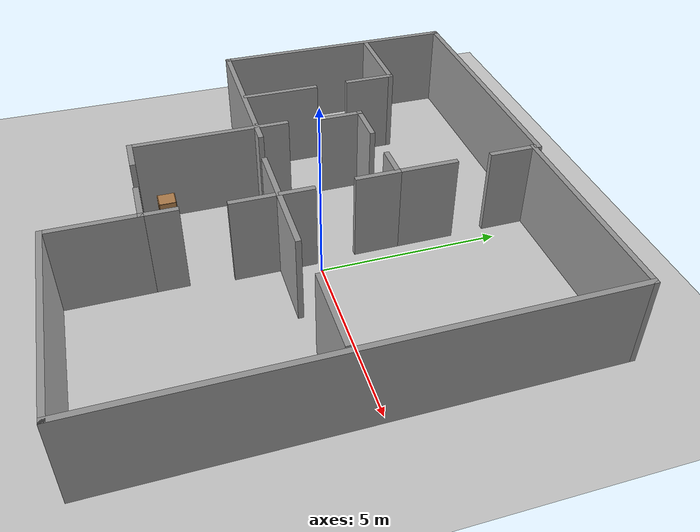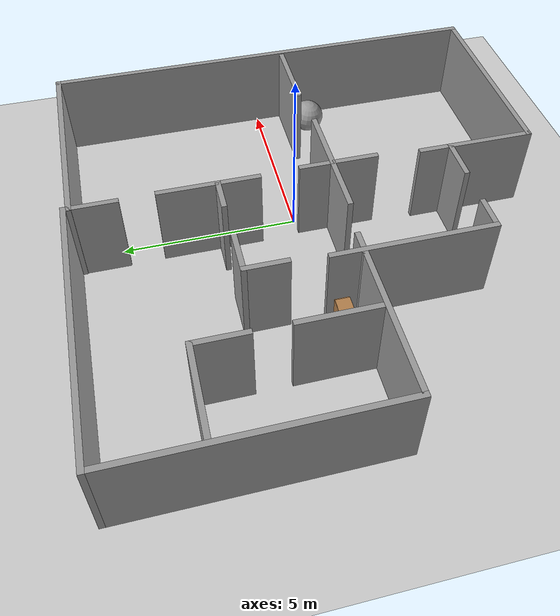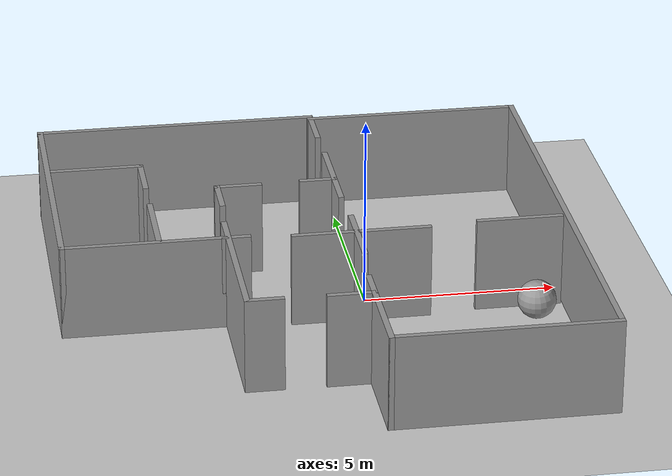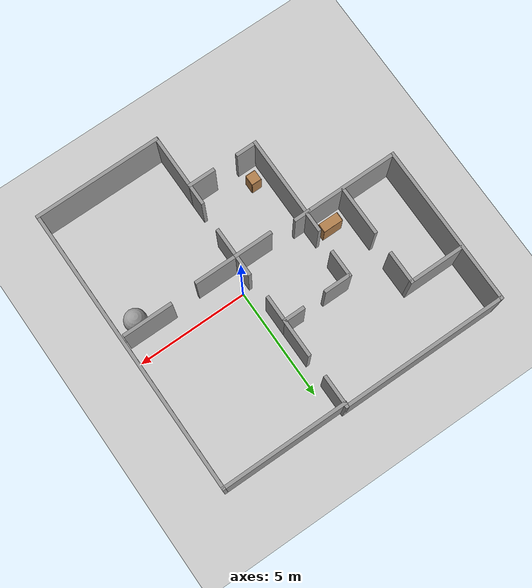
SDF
<sdf version="1.6">
 <world name="__default__">
  <model name="ground_plane">
   <static>1</static>
   <link name="link">
    <collision name="collision">
     <geometry><plane><normal>0 0 1</normal><size>100 100</size></plane></geometry>
     <surface>
      <contact><collide_bitmask>65535</collide_bitmask></contact>
      <friction><ode><mu>100</mu><mu2>50</mu2></ode></friction>
     </surface>
    </collision>
    <visual name="visual">
     <cast_shadows>0</cast_shadows>
     <geometry><plane><normal>0 0 1</normal><size>100 100</size></plane></geometry>
     <material>
      <script><uri>file://media/materials/scripts/gazebo.material</uri><name>Gazebo/Grey</name></script>
     </material>
    </visual>
   </link>
  </model>
  <model name="Untitled">
   <pose>-1.36467 -0.22662 0 0 -0 0</pose>
   <link name="Wall_0">
    <collision name="Wall_0_Collision">
     <geometry><box><size>7.5 0.15 2.5</size></box></geometry>
     <pose>0 0 1.25 0 -0 0</pose>
    </collision>
    <visual name="Wall_0_Visual">
     <pose>0 0 1.25 0 -0 0</pose>
     <geometry><box><size>7.5 0.15 2.5</size></box></geometry>
     <material>
      <script><uri>file://media/materials/scripts/gazebo.material</uri><name>Gazebo/Grey</name></script>
      <ambient>1 1 1 1</ambient>
     </material>
     <meta><layer>0</layer></meta>
    </visual>
    <pose>-2.78823 6.49198 0 0 -0 0</pose>
   </link>
   <link name="Wall_1">
    <collision name="Wall_1_Collision">
     <geometry><box><size>1.5 0.15 2.5</size></box></geometry>
     <pose>0 0 1.25 0 -0 0</pose>
    </collision>
    <visual name="Wall_1_Visual">
     <pose>0 0 1.25 0 -0 0</pose>
     <geometry><box><size>1.5 0.15 2.5</size></box></geometry>
     <material>
      <script><uri>file://media/materials/scripts/gazebo.material</uri><name>Gazebo/Grey</name></script>
      <ambient>1 1 1 1</ambient>
     </material>
     <meta><layer>0</layer></meta>
    </visual>
    <pose>0.886769 5.81698 0 0 -0 -1.5708</pose>
   </link>
   <link name="Wall_13">
    <collision name="Wall_13_Collision">
     <geometry><box><size>4.5 0.15 2.5</size></box></geometry>
     <pose>0 0 1.25 0 -0 0</pose>
    </collision>
    <visual name="Wall_13_Visual">
     <pose>0 0 1.25 0 -0 0</pose>
     <geometry><box><size>4.5 0.15 2.5</size></box></geometry>
     <material>
      <script><uri>file://media/materials/scripts/gazebo.material</uri><name>Gazebo/Grey</name></script>
      <ambient>1 1 1 1</ambient>
     </material>
     <meta><layer>0</layer></meta>
    </visual>
    <pose>-2.26562 -1.94446 0 0 -0 -1.5708</pose>
   </link>
   <link name="Wall_14">
    <collision name="Wall_14_Collision">
     <geometry><box><size>1 0.15 2.5</size></box></geometry>
     <pose>0 0 1.25 0 -0 0</pose>
    </collision>
    <visual name="Wall_14_Visual">
     <pose>0 0 1.25 0 -0 0</pose>
     <geometry><box><size>1 0.15 2.5</size></box></geometry>
     <material>
      <script><uri>file://media/materials/scripts/gazebo.material</uri><name>Gazebo/Grey</name></script>
      <ambient>1 1 1 1</ambient>
     </material>
     <meta><layer>0</layer></meta>
    </visual>
    <pose>-1.84062 -4.11946 0 0 -0 0</pose>
   </link>
   <link name="Wall_16">
    <collision name="Wall_16_Collision">
     <geometry><box><size>1.25 0.15 2.5</size></box></geometry>
     <pose>0 0 1.25 0 -0 0</pose>
    </collision>
    <visual name="Wall_16_Visual">
     <pose>0 0 1.25 0 -0 0</pose>
     <geometry><box><size>1.25 0.15 2.5</size></box></geometry>
     <material>
      <script><uri>file://media/materials/scripts/gazebo.material</uri><name>Gazebo/Grey</name></script>
      <ambient>1 1 1 1</ambient>
     </material>
     <meta><layer>0</layer></meta>
    </visual>
    <pose>0.313231 -4.14198 0 0 -0 0</pose>
   </link>
   <link name="Wall_21">
    <collision name="Wall_21_Collision">
     <geometry><box><size>2.5 0.15 2.5</size></box></geometry>
     <pose>0 0 1.25 0 -0 0</pose>
    </collision>
    <visual name="Wall_21_Visual">
     <pose>0 0 1.25 0 -0 0</pose>
     <geometry><box><size>2.5 0.15 2.5</size></box></geometry>
     <material>
      <script><uri>file://media/materials/scripts/gazebo.material</uri><name>Gazebo/Grey</name></script>
      <ambient>1 1 1 1</ambient>
     </material>
     <meta><layer>0</layer></meta>
    </visual>
    <pose>0.863231 -5.31698 0 0 -0 -1.5708</pose>
   </link>
   <link name="Wall_22">
    <collision name="Wall_22_Collision">
     <geometry><box><size>5.75 0.15 2.5</size></box></geometry>
     <pose>0 0 1.25 0 -0 0</pose>
    </collision>
    <visual name="Wall_22_Visual">
     <pose>0 0 1.25 0 -0 0</pose>
     <geometry><box><size>5.75 0.15 2.5</size></box></geometry>
     <material>
      <script><uri>file://media/materials/scripts/gazebo.material</uri><name>Gazebo/Grey</name></script>
      <ambient>1 1 1 1</ambient>
     </material>
     <meta><layer>0</layer></meta>
    </visual>
    <pose>3.66323 -6.49198 0 0 -0 0</pose>
   </link>
   <link name="Wall_23">
    <collision name="Wall_23_Collision">
     <geometry><box><size>13 0.15 2.5</size></box></geometry>
     <pose>0 0 1.25 0 -0 0</pose>
    </collision>
    <visual name="Wall_23_Visual">
     <pose>0 0 1.25 0 -0 0</pose>
     <geometry><box><size>13 0.15 2.5</size></box></geometry>
     <material>
      <script><uri>file://media/materials/scripts/gazebo.material</uri><name>Gazebo/Grey</name></script>
      <ambient>1 1 1 1</ambient>
     </material>
     <meta><layer>0</layer></meta>
    </visual>
    <pose>6.46323 -0.066979 0 0 -0 1.5708</pose>
   </link>
   <link name="Wall_24">
    <collision name="Wall_24_Collision">
     <geometry><box><size>5.75 0.15 2.5</size></box></geometry>
     <pose>0 0 1.25 0 -0 0</pose>
    </collision>
    <visual name="Wall_24_Visual">
     <pose>0 0 1.25 0 -0 0</pose>
     <geometry><box><size>5.75 0.15 2.5</size></box></geometry>
     <material>
      <script><uri>file://media/materials/scripts/gazebo.material</uri><name>Gazebo/Grey</name></script>
      <ambient>1 1 1 1</ambient>
     </material>
     <meta><layer>0</layer></meta>
    </visual>
    <pose>3.66323 6.35802 0 0 -0 3.14159</pose>
   </link>
   <link name="Wall_26">
    <collision name="Wall_26_Collision">
     <geometry><box><size>7.25 0.15 2.5</size></box></geometry>
     <pose>0 0 1.25 0 -0 0</pose>
    </collision>
    <visual name="Wall_26_Visual">
     <pose>0 0 1.25 0 -0 0</pose>
     <geometry><box><size>7.25 0.15 2.5</size></box></geometry>
     <material>
      <script><uri>file://media/materials/scripts/gazebo.material</uri><name>Gazebo/Grey</name></script>
      <ambient>1 1 1 1</ambient>
     </material>
     <meta><layer>0</layer></meta>
    </visual>
    <pose>-6.46323 2.94198 0 0 -0 -1.5708</pose>
   </link>
   <link name="Wall_27">
    <collision name="Wall_27_Collision">
     <geometry><box><size>4.25 0.15 2.5</size></box></geometry>
     <pose>0 0 1.25 0 -0 0</pose>
    </collision>
    <visual name="Wall_27_Visual">
     <pose>0 0 1.25 0 -0 0</pose>
     <geometry><box><size>4.25 0.15 2.5</size></box></geometry>
     <material>
      <script><uri>file://media/materials/scripts/gazebo.material</uri><name>Gazebo/Grey</name></script>
      <ambient>1 1 1 1</ambient>
     </material>
     <meta><layer>0</layer></meta>
    </visual>
    <pose>-4.41323 -0.608021 0 0 -0 0</pose>
   </link>
   <link name="Wall_29">
    <collision name="Wall_29_Collision">
     <geometry><box><size>1.25 0.15 2.5</size></box></geometry>
     <pose>0 0 1.25 0 -0 0</pose>
    </collision>
    <visual name="Wall_29_Visual">
     <pose>0 0 1.25 0 -0 0</pose>
     <geometry><box><size>1.25 0.15 2.5</size></box></geometry>
     <material>
      <script><uri>file://media/materials/scripts/gazebo.material</uri><name>Gazebo/Grey</name></script>
      <ambient>1 1 1 1</ambient>
     </material>
     <meta><layer>0</layer></meta>
    </visual>
    <pose>0.917575 1.89337 0 0 -0 -1.5708</pose>
   </link>
   <link name="Wall_3">
    <collision name="Wall_3_Collision">
     <geometry><box><size>1.75 0.15 2.5</size></box></geometry>
     <pose>0 0 1.25 0 -0 0</pose>
    </collision>
    <visual name="Wall_3_Visual">
     <pose>0 0 1.25 0 -0 0</pose>
     <geometry><box><size>1.75 0.15 2.5</size></box></geometry>
     <material>
      <script><uri>file://media/materials/scripts/gazebo.material</uri><name>Gazebo/Grey</name></script>
      <ambient>1 1 1 1</ambient>
     </material>
     <meta><layer>0</layer></meta>
    </visual>
    <pose>0.917575 3.24337 0 0 -0 -1.5708</pose>
   </link>
   <link name="Wall_31">
    <collision name="Wall_31_Collision">
     <geometry><box><size>2.25 0.15 2.5</size></box></geometry>
     <pose>0 0 1.25 0 -0 0</pose>
    </collision>
    <visual name="Wall_31_Visual">
     <pose>0 0 1.25 0 -0 0</pose>
     <geometry><box><size>2.25 0.15 2.5</size></box></geometry>
     <material>
      <script><uri>file://media/materials/scripts/gazebo.material</uri><name>Gazebo/Grey</name></script>
      <ambient>1 1 1 1</ambient>
     </material>
     <meta><layer>0</layer></meta>
    </visual>
    <pose>0.987535 -0.924403 0 0 -0 -1.5708</pose>
   </link>
   <link name="Wall_36">
    <collision name="Wall_36_Collision">
     <geometry><box><size>1 0.15 2.5</size></box></geometry>
     <pose>0 0 1.25 0 -0 0</pose>
    </collision>
    <visual name="Wall_36_Visual">
     <pose>0 0 1.25 0 -0 0</pose>
     <geometry><box><size>1 0.15 2.5</size></box></geometry>
     <material>
      <script><uri>file://media/materials/scripts/gazebo.material</uri><name>Gazebo/Grey</name></script>
      <ambient>1 1 1 1</ambient>
     </material>
     <meta><layer>0</layer></meta>
    </visual>
    <pose>0.863231 -3.71698 0 0 -0 1.5708</pose>
   </link>
   <link name="Wall_39">
    <collision name="Wall_39_Collision">
     <geometry><box><size>2 0.15 2.5</size></box></geometry>
     <pose>0 0 1.25 0 -0 0</pose>
    </collision>
    <visual name="Wall_39_Visual">
     <pose>0 0 1.25 0 -0 0</pose>
     <geometry><box><size>2 0.15 2.5</size></box></geometry>
     <material>
      <script><uri>file://media/materials/scripts/gazebo.material</uri><name>Gazebo/Grey</name></script>
      <ambient>1 1 1 1</ambient>
     </material>
     <meta><layer>0</layer></meta>
    </visual>
    <pose>1.91254 -0.748906 0 0 -0 0</pose>
   </link>
   <link name="Wall_4">
    <collision name="Wall_4_Collision">
     <geometry><box><size>1 0.15 2.5</size></box></geometry>
     <pose>0 0 1.25 0 -0 0</pose>
    </collision>
    <visual name="Wall_4_Visual">
     <pose>0 0 1.25 0 -0 0</pose>
     <geometry><box><size>1 0.15 2.5</size></box></geometry>
     <material>
      <script><uri>file://media/materials/scripts/gazebo.material</uri><name>Gazebo/Grey</name></script>
      <ambient>1 1 1 1</ambient>
     </material>
     <meta><layer>0</layer></meta>
    </visual>
    <pose>0.492575 2.44337 0 0 -0 3.14159</pose>
   </link>
   <link name="Wall_41">
    <collision name="Wall_41_Collision">
     <geometry><box><size>2.25 0.15 2.5</size></box></geometry>
     <pose>0 0 1.25 0 -0 0</pose>
    </collision>
    <visual name="Wall_41_Visual">
     <pose>0 0 1.25 0 -0 0</pose>
     <geometry><box><size>2.25 0.15 2.5</size></box></geometry>
     <material>
      <script><uri>file://media/materials/scripts/gazebo.material</uri><name>Gazebo/Grey</name></script>
      <ambient>1 1 1 1</ambient>
     </material>
     <meta><layer>0</layer></meta>
    </visual>
    <pose>5.22073 -0.608986 0 0 -0 0</pose>
   </link>
   <link name="Wall_43">
    <collision name="Wall_43_Collision">
     <geometry><box><size>0.75 0.15 2.5</size></box></geometry>
     <pose>0 0 1.25 0 -0 0</pose>
    </collision>
    <visual name="Wall_43_Visual">
     <pose>0 0 1.25 0 -0 0</pose>
     <geometry><box><size>0.75 0.15 2.5</size></box></geometry>
     <material>
      <script><uri>file://media/materials/scripts/gazebo.material</uri><name>Gazebo/Grey</name></script>
      <ambient>1 1 1 1</ambient>
     </material>
     <meta><layer>0</layer></meta>
    </visual>
    <pose>-2.06323 -0.608021 0 0 -0 0</pose>
   </link>
   <link name="Wall_45">
    <collision name="Wall_45_Collision">
     <geometry><box><size>1.75 0.15 2.5</size></box></geometry>
     <pose>0 0 1.25 0 -0 0</pose>
    </collision>
    <visual name="Wall_45_Visual">
     <pose>0 0 1.25 0 -0 0</pose>
     <geometry><box><size>1.75 0.15 2.5</size></box></geometry>
     <material>
      <script><uri>file://media/materials/scripts/gazebo.material</uri><name>Gazebo/Grey</name></script>
      <ambient>1 1 1 1</ambient>
     </material>
     <meta><layer>0</layer></meta>
    </visual>
    <pose>0.187535 -0.748906 0 0 -0 3.14159</pose>
   </link>
   <link name="Wall_48">
    <collision name="Wall_48_Collision">
     <geometry><box><size>2.25 0.15 2.5</size></box></geometry>
     <pose>0 0 1.25 0 -0 0</pose>
    </collision>
    <visual name="Wall_48_Visual">
     <pose>0 0 1.25 0 -0 0</pose>
     <geometry><box><size>2.25 0.15 2.5</size></box></geometry>
     <material>
      <script><uri>file://media/materials/scripts/gazebo.material</uri><name>Gazebo/Grey</name></script>
      <ambient>1 1 1 1</ambient>
     </material>
     <meta><layer>0</layer></meta>
    </visual>
    <pose>-4.01462 0.510974 0 0 -0 1.5708</pose>
   </link>
   <link name="Wall_50">
    <collision name="Wall_50_Collision">
     <geometry><box><size>1.5 0.15 2.5</size></box></geometry>
     <pose>0 0 1.25 0 -0 0</pose>
    </collision>
    <visual name="Wall_50_Visual">
     <pose>0 0 1.25 0 -0 0</pose>
     <geometry><box><size>1.5 0.15 2.5</size></box></geometry>
     <material>
      <script><uri>file://media/materials/scripts/gazebo.material</uri><name>Gazebo/Grey</name></script>
      <ambient>1 1 1 1</ambient>
     </material>
     <meta><layer>0</layer></meta>
    </visual>
    <pose>-4.01462 3.31916 0 0 -0 1.5708</pose>
   </link>
   <link name="Wall_51">
    <collision name="Wall_51_Collision">
     <geometry><box><size>2.5 0.15 2.5</size></box></geometry>
     <pose>0 0 1.25 0 -0 0</pose>
    </collision>
    <visual name="Wall_51_Visual">
     <pose>0 0 1.25 0 -0 0</pose>
     <geometry><box><size>2.5 0.15 2.5</size></box></geometry>
     <material>
      <script><uri>file://media/materials/scripts/gazebo.material</uri><name>Gazebo/Grey</name></script>
      <ambient>1 1 1 1</ambient>
     </material>
     <meta><layer>0</layer></meta>
    </visual>
    <pose>-5.18962 3.99417 0 0 -0 3.14159</pose>
   </link>
   <link name="Wall_6">
    <collision name="Wall_6_Collision">
     <geometry><box><size>1.25 0.15 2.5</size></box></geometry>
     <pose>0 0 1.25 0 -0 0</pose>
    </collision>
    <visual name="Wall_6_Visual">
     <pose>0 0 1.25 0 -0 0</pose>
     <geometry><box><size>1.25 0.15 2.5</size></box></geometry>
     <material>
      <script><uri>file://media/materials/scripts/gazebo.material</uri><name>Gazebo/Grey</name></script>
      <ambient>1 1 1 1</ambient>
     </material>
     <meta><layer>0</layer></meta>
    </visual>
    <pose>-1.62629 2.39931 0 0 -0 3.14159</pose>
   </link>
   <link name="Wall_7">
    <collision name="Wall_7_Collision">
     <geometry><box><size>1.25 0.15 2.5</size></box></geometry>
     <pose>0 0 1.25 0 -0 0</pose>
    </collision>
    <visual name="Wall_7_Visual">
     <pose>0 0 1.25 0 -0 0</pose>
     <geometry><box><size>1.25 0.15 2.5</size></box></geometry>
     <material>
      <script><uri>file://media/materials/scripts/gazebo.material</uri><name>Gazebo/Grey</name></script>
      <ambient>1 1 1 1</ambient>
     </material>
     <meta><layer>0</layer></meta>
    </visual>
    <pose>-2.17629 1.8493 0 0 -0 -1.5708</pose>
   </link>
   <static>1</static>
  </model>
  <model name="cabinet_0">
   <static>1</static>
   <link name="cabinet_bottom_plate">
    <inertial>
     <pose>0 0 -1 0 -0 0</pose>
     <inertia><ixx>2.05</ixx><ixy>0</ixy><ixz>0</ixz><iyy>2.05</iyy><iyz>0</iyz><izz>2.05</izz></inertia>
     <mass>25</mass>
    </inertial>
    <collision name="cabinet_bottom_plate_geom">
     <pose>0 0 0.01 0 -0 0</pose>
     <geometry><box><size>0.45 0.45 0.02</size></box></geometry>
    </collision>
    <visual name="cabinet_bottom_plate_geom_visual">
     <pose>0 0 0.01 0 -0 0</pose>
     <geometry><box><size>0.45 0.45 0.02</size></box></geometry>
     <material>
      <script><uri>file://media/materials/scripts/gazebo.material</uri><name>Gazebo/Wood</name></script>
     </material>
    </visual>
    <collision name="cabinet_bottom_plate_geom_cabinet_back_plate">
     <pose>0.235 0 0.51 0 -0 0</pose>
     <geometry><box><size>0.02 0.45 1.02</size></box></geometry>
    </collision>
    <visual name="cabinet_bottom_plate_geom_cabinet_back_plate_visual">
     <pose>0.235 0 0.51 0 -0 0</pose>
     <geometry><box><size>0.02 0.45 1.02</size></box></geometry>
     <material>
      <script><uri>file://media/materials/scripts/gazebo.material</uri><name>Gazebo/Wood</name></script>
     </material>
    </visual>
    <collision name="cabinet_bottom_plate_geom_cabinet_left_plate">
     <pose>0 0.235 0.51 0 -0 0</pose>
     <geometry><box><size>0.45 0.02 1.02</size></box></geometry>
    </collision>
    <visual name="cabinet_bottom_plate_geom_cabinet_left_plate_visual">
     <pose>0 0.235 0.51 0 -0 0</pose>
     <geometry><box><size>0.45 0.02 1.02</size></box></geometry>
     <material>
      <script><uri>file://media/materials/scripts/gazebo.material</uri><name>Gazebo/Wood</name></script>
     </material>
    </visual>
    <collision name="cabinet_bottom_plate_geom_cabinet_middle_plate">
     <pose>0 0 0.51 0 -0 0</pose>
     <geometry><box><size>0.45 0.45 0.02</size></box></geometry>
    </collision>
    <visual name="cabinet_bottom_plate_geom_cabinet_middle_plate_visual">
     <pose>0 0 0.51 0 -0 0</pose>
     <geometry><box><size>0.45 0.45 0.02</size></box></geometry>
     <material>
      <script><uri>file://media/materials/scripts/gazebo.material</uri><name>Gazebo/Wood</name></script>
     </material>
    </visual>
    <collision name="cabinet_bottom_plate_geom_cabinet_right_plate">
     <pose>0 -0.235 0.51 0 -0 0</pose>
     <geometry><box><size>0.45 0.02 1.02</size></box></geometry>
    </collision>
    <visual name="cabinet_bottom_plate_geom_cabinet_right_plate_visual">
     <pose>0 -0.235 0.51 0 -0 0</pose>
     <geometry><box><size>0.45 0.02 1.02</size></box></geometry>
     <material>
      <script><uri>file://media/materials/scripts/gazebo.material</uri><name>Gazebo/Wood</name></script>
     </material>
    </visual>
    <collision name="cabinet_bottom_plate_geom_cabinet_top_plate">
     <pose>0 0 1.01 0 -0 0</pose>
     <geometry><box><size>0.45 0.45 0.02</size></box></geometry>
    </collision>
    <visual name="cabinet_bottom_plate_geom_cabinet_top_plate_visual">
     <pose>0 0 1.01 0 -0 0</pose>
     <geometry><box><size>0.45 0.45 0.02</size></box></geometry>
     <material>
      <script><uri>file://media/materials/scripts/gazebo.material</uri><name>Gazebo/Wood</name></script>
     </material>
    </visual>
   </link>
   <pose>-3.00588 -3.60491 0 0 -0 0</pose>
  </model>
  <model name="unit_sphere">
   <pose>4.20844 -1.53121 0.5 0.1028 -0.078849 0.004614</pose>
   <link name="link">
    <inertial>
     <mass>1</mass>
     <inertia><ixx>0.1</ixx><ixy>0</ixy><ixz>0</ixz><iyy>0.1</iyy><iyz>0</iyz><izz>0.1</izz></inertia>
    </inertial>
    <collision name="collision"><geometry><sphere><radius>0.5</radius></sphere></geometry></collision>
    <visual name="visual">
     <geometry><sphere><radius>0.5</radius></sphere></geometry>
     <material>
      <script><name>Gazebo/Grey</name><uri>file://media/materials/scripts/gazebo.material</uri></script>
     </material>
    </visual>
   </link>
  </model>
  <model name="bookshelf_0">
   <static>1</static>
   <link name="link">
    <inertial><mass>1</mass></inertial>
    <collision name="back">
     <pose>0 0.005 0.6 0 -0 0</pose>
     <geometry><box><size>0.9 0.01 1.2</size></box></geometry>
    </collision>
    <visual name="visual1">
     <pose>0 0.005 0.6 0 -0 0</pose>
     <geometry><box><size>0.9 0.01 1.2</size></box></geometry>
     <material>
      <script><uri>file://media/materials/scripts/gazebo.material</uri><name>Gazebo/Wood</name></script>
     </material>
    </visual>
    <collision name="left_side">
     <pose>0.45 -0.195 0.6 0 -0 0</pose>
     <geometry><box><size>0.02 0.4 1.2</size></box></geometry>
    </collision>
    <visual name="visual2">
     <pose>0.45 -0.195 0.6 0 -0 0</pose>
     <geometry><box><size>0.02 0.4 1.2</size></box></geometry>
     <material>
      <script><uri>file://media/materials/scripts/gazebo.material</uri><name>Gazebo/Wood</name></script>
     </material>
    </visual>
    <collision name="right_side">
     <pose>-0.45 -0.195 0.6 0 -0 0</pose>
     <geometry><box><size>0.02 0.4 1.2</size></box></geometry>
    </collision>
    <visual name="visual3">
     <pose>-0.45 -0.195 0.6 0 -0 0</pose>
     <geometry><box><size>0.02 0.4 1.2</size></box></geometry>
     <material>
      <script><uri>file://media/materials/scripts/gazebo.material</uri><name>Gazebo/Wood</name></script>
     </material>
    </visual>
    <collision name="bottom">
     <pose>0 -0.195 0.03 0 -0 0</pose>
     <geometry><box><size>0.88 0.4 0.06</size></box></geometry>
    </collision>
    <visual name="visual4">
     <pose>0 -0.195 0.03 0 -0 0</pose>
     <geometry><box><size>0.88 0.4 0.06</size></box></geometry>
     <material>
      <script><uri>file://media/materials/scripts/gazebo.material</uri><name>Gazebo/Wood</name></script>
     </material>
    </visual>
    <collision name="top">
     <pose>0 -0.195 1.19 0 -0 0</pose>
     <geometry><box><size>0.88 0.4 0.02</size></box></geometry>
    </collision>
    <visual name="visual5">
     <pose>0 -0.195 1.19 0 -0 0</pose>
     <geometry><box><size>0.88 0.4 0.02</size></box></geometry>
     <material>
      <script><uri>file://media/materials/scripts/gazebo.material</uri><name>Gazebo/Wood</name></script>
     </material>
    </visual>
    <collision name="low_shelf">
     <pose>0 -0.195 0.43 0 -0 0</pose>
     <geometry><box><size>0.88 0.4 0.02</size></box></geometry>
    </collision>
    <visual name="visual6">
     <pose>0 -0.195 0.43 0 -0 0</pose>
     <geometry><box><size>0.88 0.4 0.02</size></box></geometry>
     <material>
      <script><uri>file://media/materials/scripts/gazebo.material</uri><name>Gazebo/Wood</name></script>
     </material>
    </visual>
    <collision name="high_shelf">
     <pose>0 -0.195 0.8 0 -0 0</pose>
     <geometry><box><size>0.88 0.4 0.02</size></box></geometry>
    </collision>
    <visual name="visual7">
     <pose>0 -0.195 0.8 0 -0 0</pose>
     <geometry><box><size>0.88 0.4 0.02</size></box></geometry>
     <material>
      <script><uri>file://media/materials/scripts/gazebo.material</uri><name>Gazebo/Wood</name></script>
     </material>
    </visual>
   </link>
   <pose>-4.44923 -0.034417 0 0 -0 0</pose>
  </model>
 </world>
</sdf>
